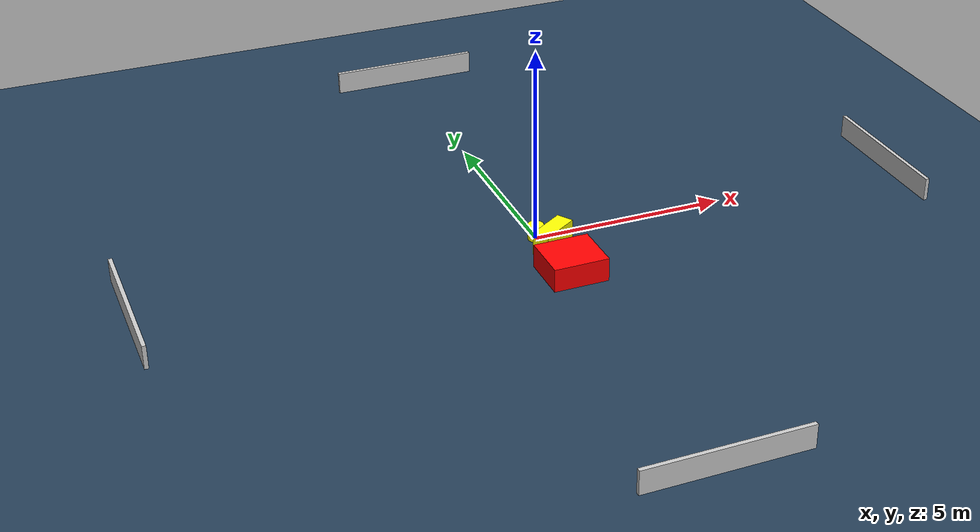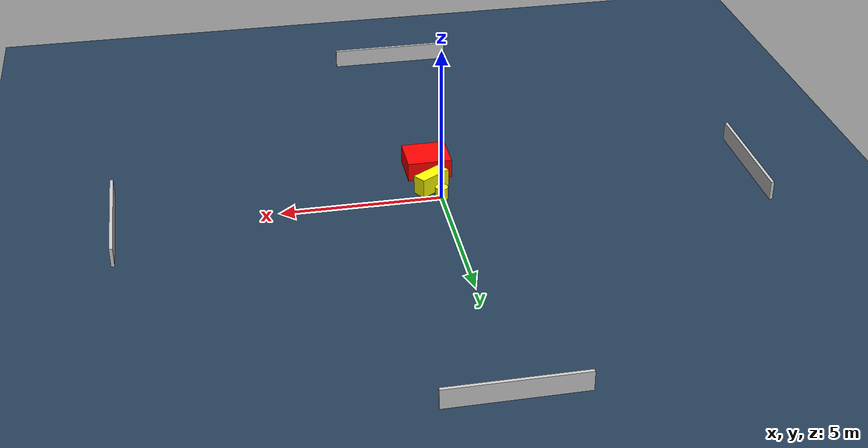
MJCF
<?xml version="1.0" ?>
<mujoco model="generated_environment">
  <option timestep="0.01" integrator="RK4" cone="elliptic"/>
  <default>
    <geom density="1"/>
  </default>
  <asset>
    <texture builtin="gradient" height="3072" name="skybox" rgb1="0.3 0.5 0.7" rgb2="0 0 0" type="skybox" width="512"/>
    <texture builtin="checker" height="300" name="groundplane" rgb1="0.2 0.3 0.4" rgb2="0.1 0.2 0.3" type="2d" width="300"/>
    <material name="groundplane" reflectance="0.2" texrepeat="5 5" texture="groundplane"/>
  </asset>
  <worldbody>
    <light dir="0 0 -1" directional="true" pos="0 0 1.5"/>
    <geom condim="3" friction="0.5 0.005 0.001" material="groundplane" name="floor" pos="0 0 0" size="0 0 0.05" type="plane"/>
    <body name="walls">
      <geom name="wall_1" condim="4" pos="-10.0 0.0 0.3" rgba="0.800000011920929 0.800000011920929 0.800000011920929 1.0" size="0.05 2.0 0.3" type="box"/>
      <geom name="wall_2" condim="4" pos="10.0 0.0 0.3" rgba="0.800000011920929 0.800000011920929 0.800000011920929 1.0" size="0.05 2.0 0.3" type="box"/>
      <geom name="wall_3" condim="4" pos="0.0 -10.0 0.3" rgba="0.800000011920929 0.800000011920929 0.800000011920929 1.0" size="2.0 0.05 0.3" type="box"/>
      <geom name="wall_4" condim="4" pos="0.0 10.0 0.3" rgba="0.800000011920929 0.800000011920929 0.800000011920929 1.0" size="2.0 0.05 0.3" type="box"/>
    </body>
    <body name="robot">
      <joint name="joint_x" type="slide" pos="0 0 0" axis="1 0 0"/>
      <joint name="joint_y" type="slide" pos="0 0 0" axis="0 1 0"/>
      <geom name="robot" type="cylinder" pos="0.0 0.0 0.2" size="0.2 0.2 0.0" mass="5.0" friction="1.0 0.005 0.0001" condim="4" rgba="1.0 1.0 0.0 1.0"/>
    </body>
    <body name="obstacle_1_movable">
      <geom name="obstacle_1_movable" condim="4" pos="0.21215153341394133 -0.578412990080115 0.3" euler="0 0 302.91094566461305" friction="0.0 0.005 0.001" rgba="1.0 1.0 0.0 1.0" size="0.2209164202649583 0.5341569583052921 0.3" type="box" mass="0.1"/>
      <joint type="free"/>
    </body>
    <body name="obstacle_2_static">
      <geom name="obstacle_2_static" condim="4" pos="0.13931912858002163 -1.8608589142012686 0.3" euler="0 0 270.23368656311476" friction="0.0 0.005 0.001" rgba="1.0 0.0 0.0 1.0" size="0.6371457725584344 0.6993093643511521 0.3" type="box"/>
    </body>
  </worldbody>
  <actuator>
    <motor name="actuator_x" joint="joint_x" gear="1" ctrlrange="-1 1"/>
    <motor name="actuator_y" joint="joint_y" gear="1" ctrlrange="-1 1"/>
  </actuator>
</mujoco>
